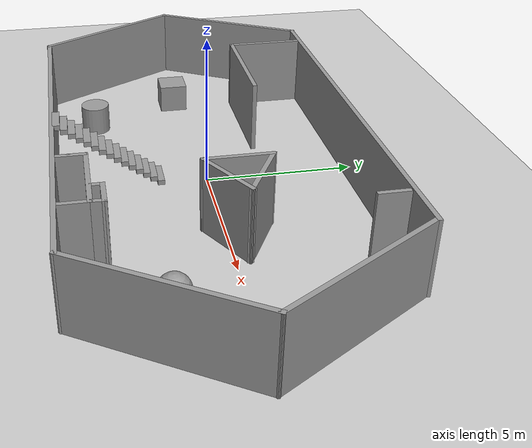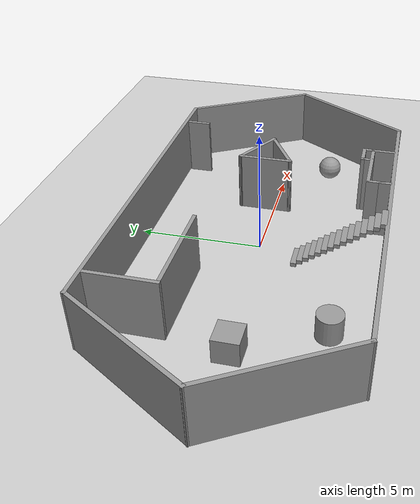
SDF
<sdf version="1.7">
 <world name="default">
  <light name="sun" type="directional">
   <pose>0 0 10 0 -0 0</pose>
   <diffuse>0.8 0.8 0.8 1</diffuse>
   <specular>0.2 0.2 0.2 1</specular>
   <attenuation>
    <range>1000</range>
    <constant>0.9</constant>
    <linear>0.01</linear>
    <quadratic>0.001</quadratic>
   </attenuation>
   <direction>-0.5 0.1 -0.9</direction>
   <spot><inner_angle>0</inner_angle><outer_angle>0</outer_angle><falloff>0</falloff></spot>
  </light>
  <model name="ground_plane">
   <static>1</static>
   <link name="link">
    <collision name="collision">
     <geometry><plane><normal>0 0 1</normal><size>100 100</size></plane></geometry>
     <surface>
      <contact><collide_bitmask>65535</collide_bitmask></contact>
      <friction><ode><mu>100</mu><mu2>50</mu2></ode></friction>
     </surface>
    </collision>
    <visual name="visual">
     <cast_shadows>0</cast_shadows>
     <geometry><plane><normal>0 0 1</normal><size>100 100</size></plane></geometry>
     <material>
      <script><uri>file://media/materials/scripts/gazebo.material</uri><name>Gazebo/Grey</name></script>
     </material>
    </visual>
   </link>
  </model>
  <gravity>0 0 -9.8</gravity>
  <magnetic_field>6e-06 2.3e-05 -4.2e-05</magnetic_field>
  <atmosphere type="adiabatic"/>
  <physics type="ode">
   <max_step_size>0.001</max_step_size>
   <real_time_factor>1</real_time_factor>
   <real_time_update_rate>1000</real_time_update_rate>
  </physics>
  <scene><ambient>0.4 0.4 0.4 1</ambient><background>0.7 0.7 0.7 1</background><shadows>1</shadows></scene>
  <audio><device>default</device></audio>
  <spherical_coordinates>
   <surface_model>EARTH_WGS84</surface_model>
   <latitude_deg>0</latitude_deg>
   <longitude_deg>0</longitude_deg>
   <elevation>0</elevation>
   <heading_deg>0</heading_deg>
  </spherical_coordinates>
  <model name="Untitled">
   <pose>0.042482 -0.098265 0 0 -0 0</pose>
   <link name="Wall_10">
    <collision name="Wall_10_Collision">
     <geometry><box><size>5.75 0.15 2.5</size></box></geometry>
     <pose>0 0 1.25 0 -0 0</pose>
    </collision>
    <visual name="Wall_10_Visual">
     <pose>0 0 1.25 0 -0 0</pose>
     <geometry><box><size>5.75 0.15 2.5</size></box></geometry>
     <material>
      <script><uri>file://media/materials/scripts/gazebo.material</uri><name>Gazebo/Grey</name></script>
      <ambient>1 1 1 1</ambient>
     </material>
     <meta><layer>0</layer></meta>
    </visual>
    <pose>8.32452 2.42535 0 0 -0 -1.0472</pose>
   </link>
   <link name="Wall_12">
    <collision name="Wall_12_Collision">
     <geometry><box><size>5.87909 0.15 2.5</size></box></geometry>
     <pose>0 0 1.25 0 -0 0</pose>
    </collision>
    <visual name="Wall_12_Visual">
     <pose>0 0 1.25 0 -0 0</pose>
     <geometry><box><size>5.87909 0.15 2.5</size></box></geometry>
     <material>
      <script><uri>file://media/materials/scripts/gazebo.material</uri><name>Gazebo/Grey</name></script>
      <ambient>1 1 1 1</ambient>
     </material>
     <meta><layer>0</layer></meta>
    </visual>
    <pose>8.19952 -2.42439 0 0 -0 -2.13219</pose>
   </link>
   <link name="Wall_14">
    <collision name="Wall_14_Collision">
     <geometry><box><size>2.75 0.15 2.5</size></box></geometry>
     <pose>0 0 1.25 0 -0 0</pose>
    </collision>
    <visual name="Wall_14_Visual">
     <pose>0 0 1.25 0 -0 0</pose>
     <geometry><box><size>2.75 0.15 2.5</size></box></geometry>
     <material>
      <script><uri>file://media/materials/scripts/gazebo.material</uri><name>Gazebo/Grey</name></script>
      <ambient>1 1 1 1</ambient>
     </material>
     <meta><layer>0</layer></meta>
    </visual>
    <pose>-5.8277 3.42991 0 0 -0 -1.5708</pose>
   </link>
   <link name="Wall_16">
    <collision name="Wall_16_Collision">
     <geometry><box><size>4 0.15 2.5</size></box></geometry>
     <pose>0 0 1.25 0 -0 0</pose>
    </collision>
    <visual name="Wall_16_Visual">
     <pose>0 0 1.25 0 -0 0</pose>
     <geometry><box><size>4 0.15 2.5</size></box></geometry>
     <material>
      <script><uri>file://media/materials/scripts/gazebo.material</uri><name>Gazebo/Grey</name></script>
      <ambient>1 1 1 1</ambient>
     </material>
     <meta><layer>0</layer></meta>
    </visual>
    <pose>-3.9027 2.12992 0 0 -0 0</pose>
   </link>
   <link name="Wall_19">
    <collision name="Wall_19_Collision">
     <geometry><box><size>2.25 0.15 2.5</size></box></geometry>
     <pose>0 0 1.25 0 -0 0</pose>
    </collision>
    <visual name="Wall_19_Visual">
     <pose>0 0 1.25 0 -0 0</pose>
     <geometry><box><size>2.25 0.15 2.5</size></box></geometry>
     <material>
      <script><uri>file://media/materials/scripts/gazebo.material</uri><name>Gazebo/Grey</name></script>
      <ambient>1 1 1 1</ambient>
     </material>
     <meta><layer>0</layer></meta>
    </visual>
    <pose>2.84125 0.522084 0 0 -0 -1.5708</pose>
   </link>
   <link name="Wall_20">
    <collision name="Wall_20_Collision">
     <geometry><box><size>2.25 0.15 2.5</size></box></geometry>
     <pose>0 0 1.25 0 -0 0</pose>
    </collision>
    <visual name="Wall_20_Visual">
     <pose>0 0 1.25 0 -0 0</pose>
     <geometry><box><size>2.25 0.15 2.5</size></box></geometry>
     <material>
      <script><uri>file://media/materials/scripts/gazebo.material</uri><name>Gazebo/Grey</name></script>
      <ambient>1 1 1 1</ambient>
     </material>
     <meta><layer>0</layer></meta>
    </visual>
    <pose>3.75058 -0.002916 0 0 -0 0.523599</pose>
   </link>
   <link name="Wall_21">
    <collision name="Wall_21_Collision">
     <geometry><box><size>2.25 0.15 2.5</size></box></geometry>
     <pose>0 0 1.25 0 -0 0</pose>
    </collision>
    <visual name="Wall_21_Visual">
     <pose>0 0 1.25 0 -0 0</pose>
     <geometry><box><size>2.25 0.15 2.5</size></box></geometry>
     <material>
      <script><uri>file://media/materials/scripts/gazebo.material</uri><name>Gazebo/Grey</name></script>
      <ambient>1 1 1 1</ambient>
     </material>
     <meta><layer>0</layer></meta>
    </visual>
    <pose>3.75058 1.04708 0 0 -0 2.61799</pose>
   </link>
   <link name="Wall_23">
    <collision name="Wall_23_Collision">
     <geometry><box><size>0.5 0.15 2.5</size></box></geometry>
     <pose>0 0 1.25 0 -0 0</pose>
    </collision>
    <visual name="Wall_23_Visual">
     <pose>0 0 1.25 0 -0 0</pose>
     <geometry><box><size>0.5 0.15 2.5</size></box></geometry>
     <material>
      <script><uri>file://media/materials/scripts/gazebo.material</uri><name>Gazebo/Grey</name></script>
      <ambient>1 1 1 1</ambient>
     </material>
     <meta><layer>0</layer></meta>
    </visual>
    <pose>1.93614 -4.55653 0 0 -0 -1.5708</pose>
   </link>
   <link name="Wall_24">
    <collision name="Wall_24_Collision">
     <geometry><box><size>1 0.15 2.5</size></box></geometry>
     <pose>0 0 1.25 0 -0 0</pose>
    </collision>
    <visual name="Wall_24_Visual">
     <pose>0 0 1.25 0 -0 0</pose>
     <geometry><box><size>1 0.15 2.5</size></box></geometry>
     <material>
      <script><uri>file://media/materials/scripts/gazebo.material</uri><name>Gazebo/Grey</name></script>
      <ambient>1 1 1 1</ambient>
     </material>
     <meta><layer>0</layer></meta>
    </visual>
    <pose>1.93614 -4.30653 0 0 -0 1.5708</pose>
   </link>
   <link name="Wall_25">
    <collision name="Wall_25_Collision">
     <geometry><box><size>2.75 0.15 2.5</size></box></geometry>
     <pose>0 0 1.25 0 -0 0</pose>
    </collision>
    <visual name="Wall_25_Visual">
     <pose>0 0 1.25 0 -0 0</pose>
     <geometry><box><size>2.75 0.15 2.5</size></box></geometry>
     <material>
      <script><uri>file://media/materials/scripts/gazebo.material</uri><name>Gazebo/Grey</name></script>
      <ambient>1 1 1 1</ambient>
     </material>
     <meta><layer>0</layer></meta>
    </visual>
    <pose>3.23614 -3.88153 0 0 -0 0</pose>
   </link>
   <link name="Wall_26">
    <collision name="Wall_26_Collision">
     <geometry><box><size>1 0.15 2.5</size></box></geometry>
     <pose>0 0 1.25 0 -0 0</pose>
    </collision>
    <visual name="Wall_26_Visual">
     <pose>0 0 1.25 0 -0 0</pose>
     <geometry><box><size>1 0.15 2.5</size></box></geometry>
     <material>
      <script><uri>file://media/materials/scripts/gazebo.material</uri><name>Gazebo/Grey</name></script>
      <ambient>1 1 1 1</ambient>
     </material>
     <meta><layer>0</layer></meta>
    </visual>
    <pose>4.53614 -4.30653 0 0 -0 -1.5708</pose>
   </link>
   <link name="Wall_28">
    <collision name="Wall_28_Collision">
     <geometry><box><size>0.5 0.15 2.5</size></box></geometry>
     <pose>0 0 1.25 0 -0 0</pose>
    </collision>
    <visual name="Wall_28_Visual">
     <pose>0 0 1.25 0 -0 0</pose>
     <geometry><box><size>0.5 0.15 2.5</size></box></geometry>
     <material>
      <script><uri>file://media/materials/scripts/gazebo.material</uri><name>Gazebo/Grey</name></script>
      <ambient>1 1 1 1</ambient>
     </material>
     <meta><layer>0</layer></meta>
    </visual>
    <pose>3.70614 -3.67154 0 0 -0 -1.5708</pose>
   </link>
   <link name="Wall_3">
    <collision name="Wall_3_Collision">
     <geometry><box><size>13.75 0.15 2.5</size></box></geometry>
     <pose>0 0 1.25 0 -0 0</pose>
    </collision>
    <visual name="Wall_3_Visual">
     <pose>0 0 1.25 0 -0 0</pose>
     <geometry><box><size>13.75 0.15 2.5</size></box></geometry>
     <material>
      <script><uri>file://media/materials/scripts/gazebo.material</uri><name>Gazebo/Grey</name></script>
      <ambient>1 1 1 1</ambient>
     </material>
     <meta><layer>0</layer></meta>
    </visual>
    <pose>-0.125482 -4.84926 0 0 -0 0</pose>
   </link>
   <link name="Wall_30">
    <collision name="Wall_30_Collision">
     <geometry><box><size>1 0.15 2.5</size></box></geometry>
     <pose>0 0 1.25 0 -0 0</pose>
    </collision>
    <visual name="Wall_30_Visual">
     <pose>0 0 1.25 0 -0 0</pose>
     <geometry><box><size>1 0.15 2.5</size></box></geometry>
     <material>
      <script><uri>file://media/materials/scripts/gazebo.material</uri><name>Gazebo/Grey</name></script>
      <ambient>1 1 1 1</ambient>
     </material>
     <meta><layer>0</layer></meta>
    </visual>
    <pose>4.13113 -3.49654 0 0 -0 0</pose>
   </link>
   <link name="Wall_31">
    <collision name="Wall_31_Collision">
     <geometry><box><size>0.535516 0.15 2.5</size></box></geometry>
     <pose>0 0 1.25 0 -0 0</pose>
    </collision>
    <visual name="Wall_31_Visual">
     <pose>0 0 1.25 0 -0 0</pose>
     <geometry><box><size>0.535516 0.15 2.5</size></box></geometry>
     <material>
      <script><uri>file://media/materials/scripts/gazebo.material</uri><name>Gazebo/Grey</name></script>
      <ambient>1 1 1 1</ambient>
     </material>
     <meta><layer>0</layer></meta>
    </visual>
    <pose>4.54614 -3.68903 0 0 -0 -1.62268</pose>
   </link>
   <link name="Wall_6">
    <collision name="Wall_6_Collision">
     <geometry><box><size>5.75 0.15 2.5</size></box></geometry>
     <pose>0 0 1.25 0 -0 0</pose>
    </collision>
    <visual name="Wall_6_Visual">
     <pose>0 0 1.25 0 -0 0</pose>
     <geometry><box><size>5.75 0.15 2.5</size></box></geometry>
     <material>
      <script><uri>file://media/materials/scripts/gazebo.material</uri><name>Gazebo/Grey</name></script>
      <ambient>1 1 1 1</ambient>
     </material>
     <meta><layer>0</layer></meta>
    </visual>
    <pose>-8.32548 -2.42439 0 0 -0 2.0944</pose>
   </link>
   <link name="Wall_8">
    <collision name="Wall_8_Collision">
     <geometry><box><size>5.75 0.15 2.5</size></box></geometry>
     <pose>0 0 1.25 0 -0 0</pose>
    </collision>
    <visual name="Wall_8_Visual">
     <pose>0 0 1.25 0 -0 0</pose>
     <geometry><box><size>5.75 0.15 2.5</size></box></geometry>
     <material>
      <script><uri>file://media/materials/scripts/gazebo.material</uri><name>Gazebo/Grey</name></script>
      <ambient>1 1 1 1</ambient>
     </material>
     <meta><layer>0</layer></meta>
    </visual>
    <pose>-8.32548 2.42535 0 0 -0 1.0472</pose>
   </link>
   <link name="Wall_9">
    <collision name="Wall_9_Collision">
     <geometry><box><size>14.0201 0.15 2.5</size></box></geometry>
     <pose>0 0 1.25 0 -0 0</pose>
    </collision>
    <visual name="Wall_9_Visual">
     <pose>0 0 1.25 0 -0 0</pose>
     <geometry><box><size>14.0201 0.15 2.5</size></box></geometry>
     <material>
      <script><uri>file://media/materials/scripts/gazebo.material</uri><name>Gazebo/Grey</name></script>
      <ambient>1 1 1 1</ambient>
     </material>
     <meta><layer>0</layer></meta>
    </visual>
    <pose>0.009574 4.86028 0 0 -0 0.00145</pose>
   </link>
   <static>1</static>
  </model>
  <model name="unit_cylinder">
   <pose>-4.43584 -3.4393 0.499993 -3e-06 -3e-06 0</pose>
   <link name="link">
    <inertial>
     <mass>1</mass>
     <inertia><ixx>0.145833</ixx><ixy>0</ixy><ixz>0</ixz><iyy>0.145833</iyy><iyz>0</iyz><izz>0.125</izz></inertia>
    </inertial>
    <collision name="collision">
     <geometry><cylinder><radius>0.5</radius><length>1</length></cylinder></geometry>
    </collision>
    <visual name="visual">
     <geometry><cylinder><radius>0.5</radius><length>1</length></cylinder></geometry>
     <material>
      <script><name>Gazebo/Grey</name><uri>file://media/materials/scripts/gazebo.material</uri></script>
     </material>
    </visual>
   </link>
  </model>
  <model name="unit_sphere">
   <pose>6.17165 -1.98391 0.5 0 -0 0</pose>
   <link name="link">
    <inertial>
     <mass>1</mass>
     <inertia><ixx>0.1</ixx><ixy>0</ixy><ixz>0</ixz><iyy>0.1</iyy><iyz>0</iyz><izz>0.1</izz></inertia>
    </inertial>
    <collision name="collision"><geometry><sphere><radius>0.5</radius></sphere></geometry></collision>
    <visual name="visual">
     <geometry><sphere><radius>0.5</radius></sphere></geometry>
     <material>
      <script><name>Gazebo/Grey</name><uri>file://media/materials/scripts/gazebo.material</uri></script>
     </material>
    </visual>
   </link>
  </model>
  <model name="unit_box">
   <pose>-5.9919 -0.329924 0.499995 -1e-05 -0 0</pose>
   <link name="link">
    <inertial>
     <mass>1</mass>
     <inertia>
      <ixx>0.166667</ixx>
      <ixy>0</ixy>
      <ixz>0</ixz>
      <iyy>0.166667</iyy>
      <iyz>0</iyz>
      <izz>0.166667</izz>
     </inertia>
    </inertial>
    <collision name="collision"><geometry><box><size>1 1 1</size></box></geometry></collision>
    <visual name="visual">
     <geometry><box><size>1 1 1</size></box></geometry>
     <material>
      <script><name>Gazebo/Grey</name><uri>file://media/materials/scripts/gazebo.material</uri></script>
     </material>
    </visual>
   </link>
  </model>
  <model name="Untitled_0">
   <pose>2.32212 -0.136701 0 0 -0 0</pose>
   <link name="Stairs_4">
    <visual name="Stairs_4_Visual_0">
     <pose>-2.78671 -1.40544 0.083333 0 -0 0</pose>
     <geometry><box><size>1 0.233333 0.166667</size></box></geometry>
     <material>
      <script><uri>file://media/materials/scripts/gazebo.material</uri><name>Gazebo/Grey</name></script>
      <ambient>1 1 1 1</ambient>
     </material>
     <meta><layer>0</layer></meta>
    </visual>
    <collision name="Stairs_4_Collision_0">
     <geometry><box><size>1 0.233333 0.166667</size></box></geometry>
     <pose>-2.78671 -1.40544 0.083333 0 -0 0</pose>
    </collision>
    <visual name="Stairs_4_Visual_1">
     <pose>-2.78671 -1.63877 0.25 0 -0 0</pose>
     <geometry><box><size>1 0.233333 0.166667</size></box></geometry>
     <material>
      <script><uri>file://media/materials/scripts/gazebo.material</uri><name>Gazebo/Grey</name></script>
      <ambient>1 1 1 1</ambient>
     </material>
     <meta><layer>0</layer></meta>
    </visual>
    <collision name="Stairs_4_Collision_1">
     <geometry><box><size>1 0.233333 0.166667</size></box></geometry>
     <pose>-2.78671 -1.63877 0.25 0 -0 0</pose>
    </collision>
    <visual name="Stairs_4_Visual_2">
     <pose>-2.78671 -1.8721 0.416667 0 -0 0</pose>
     <geometry><box><size>1 0.233333 0.166667</size></box></geometry>
     <material>
      <script><uri>file://media/materials/scripts/gazebo.material</uri><name>Gazebo/Grey</name></script>
      <ambient>1 1 1 1</ambient>
     </material>
     <meta><layer>0</layer></meta>
    </visual>
    <collision name="Stairs_4_Collision_2">
     <geometry><box><size>1 0.233333 0.166667</size></box></geometry>
     <pose>-2.78671 -1.8721 0.416667 0 -0 0</pose>
    </collision>
    <visual name="Stairs_4_Visual_3">
     <pose>-2.78671 -2.10544 0.583333 0 -0 0</pose>
     <geometry><box><size>1 0.233333 0.166667</size></box></geometry>
     <material>
      <script><uri>file://media/materials/scripts/gazebo.material</uri><name>Gazebo/Grey</name></script>
      <ambient>1 1 1 1</ambient>
     </material>
     <meta><layer>0</layer></meta>
    </visual>
    <collision name="Stairs_4_Collision_3">
     <geometry><box><size>1 0.233333 0.166667</size></box></geometry>
     <pose>-2.78671 -2.10544 0.583333 0 -0 0</pose>
    </collision>
    <visual name="Stairs_4_Visual_4">
     <pose>-2.78671 -2.33877 0.75 0 -0 0</pose>
     <geometry><box><size>1 0.233333 0.166667</size></box></geometry>
     <material>
      <script><uri>file://media/materials/scripts/gazebo.material</uri><name>Gazebo/Grey</name></script>
      <ambient>1 1 1 1</ambient>
     </material>
     <meta><layer>0</layer></meta>
    </visual>
    <collision name="Stairs_4_Collision_4">
     <geometry><box><size>1 0.233333 0.166667</size></box></geometry>
     <pose>-2.78671 -2.33877 0.75 0 -0 0</pose>
    </collision>
    <visual name="Stairs_4_Visual_5">
     <pose>-2.78671 -2.5721 0.916667 0 -0 0</pose>
     <geometry><box><size>1 0.233333 0.166667</size></box></geometry>
     <material>
      <script><uri>file://media/materials/scripts/gazebo.material</uri><name>Gazebo/Grey</name></script>
      <ambient>1 1 1 1</ambient>
     </material>
     <meta><layer>0</layer></meta>
    </visual>
    <collision name="Stairs_4_Collision_5">
     <geometry><box><size>1 0.233333 0.166667</size></box></geometry>
     <pose>-2.78671 -2.5721 0.916667 0 -0 0</pose>
    </collision>
    <visual name="Stairs_4_Visual_6">
     <pose>-2.78671 -2.80544 1.08333 0 -0 0</pose>
     <geometry><box><size>1 0.233333 0.166667</size></box></geometry>
     <material>
      <script><uri>file://media/materials/scripts/gazebo.material</uri><name>Gazebo/Grey</name></script>
      <ambient>1 1 1 1</ambient>
     </material>
     <meta><layer>0</layer></meta>
    </visual>
    <collision name="Stairs_4_Collision_6">
     <geometry><box><size>1 0.233333 0.166667</size></box></geometry>
     <pose>-2.78671 -2.80544 1.08333 0 -0 0</pose>
    </collision>
    <visual name="Stairs_4_Visual_7">
     <pose>-2.78671 -3.03877 1.25 0 -0 0</pose>
     <geometry><box><size>1 0.233333 0.166667</size></box></geometry>
     <material>
      <script><uri>file://media/materials/scripts/gazebo.material</uri><name>Gazebo/Grey</name></script>
      <ambient>1 1 1 1</ambient>
     </material>
     <meta><layer>0</layer></meta>
    </visual>
    <collision name="Stairs_4_Collision_7">
     <geometry><box><size>1 0.233333 0.166667</size></box></geometry>
     <pose>-2.78671 -3.03877 1.25 0 -0 0</pose>
    </collision>
    <visual name="Stairs_4_Visual_8">
     <pose>-2.78671 -3.2721 1.41667 0 -0 0</pose>
     <geometry><box><size>1 0.233333 0.166667</size></box></geometry>
     <material>
      <script><uri>file://media/materials/scripts/gazebo.material</uri><name>Gazebo/Grey</name></script>
      <ambient>1 1 1 1</ambient>
     </material>
     <meta><layer>0</layer></meta>
    </visual>
    <collision name="Stairs_4_Collision_8">
     <geometry><box><size>1 0.233333 0.166667</size></box></geometry>
     <pose>-2.78671 -3.2721 1.41667 0 -0 0</pose>
    </collision>
    <visual name="Stairs_4_Visual_9">
     <pose>-2.78671 -3.50544 1.58333 0 -0 0</pose>
     <geometry><box><size>1 0.233333 0.166667</size></box></geometry>
     <material>
      <script><uri>file://media/materials/scripts/gazebo.material</uri><name>Gazebo/Grey</name></script>
      <ambient>1 1 1 1</ambient>
     </material>
     <meta><layer>0</layer></meta>
    </visual>
    <collision name="Stairs_4_Collision_9">
     <geometry><box><size>1 0.233333 0.166667</size></box></geometry>
     <pose>-2.78671 -3.50544 1.58333 0 -0 0</pose>
    </collision>
    <visual name="Stairs_4_Visual_10">
     <pose>-2.78671 -3.73877 1.75 0 -0 0</pose>
     <geometry><box><size>1 0.233333 0.166667</size></box></geometry>
     <material>
      <script><uri>file://media/materials/scripts/gazebo.material</uri><name>Gazebo/Grey</name></script>
      <ambient>1 1 1 1</ambient>
     </material>
     <meta><layer>0</layer></meta>
    </visual>
    <collision name="Stairs_4_Collision_10">
     <geometry><box><size>1 0.233333 0.166667</size></box></geometry>
     <pose>-2.78671 -3.73877 1.75 0 -0 0</pose>
    </collision>
    <visual name="Stairs_4_Visual_11">
     <pose>-2.78671 -3.9721 1.91667 0 -0 0</pose>
     <geometry><box><size>1 0.233333 0.166667</size></box></geometry>
     <material>
      <script><uri>file://media/materials/scripts/gazebo.material</uri><name>Gazebo/Grey</name></script>
      <ambient>1 1 1 1</ambient>
     </material>
     <meta><layer>0</layer></meta>
    </visual>
    <collision name="Stairs_4_Collision_11">
     <geometry><box><size>1 0.233333 0.166667</size></box></geometry>
     <pose>-2.78671 -3.9721 1.91667 0 -0 0</pose>
    </collision>
    <visual name="Stairs_4_Visual_12">
     <pose>-2.78671 -4.20544 2.08333 0 -0 0</pose>
     <geometry><box><size>1 0.233333 0.166667</size></box></geometry>
     <material>
      <script><uri>file://media/materials/scripts/gazebo.material</uri><name>Gazebo/Grey</name></script>
      <ambient>1 1 1 1</ambient>
     </material>
     <meta><layer>0</layer></meta>
    </visual>
    <collision name="Stairs_4_Collision_12">
     <geometry><box><size>1 0.233333 0.166667</size></box></geometry>
     <pose>-2.78671 -4.20544 2.08333 0 -0 0</pose>
    </collision>
    <visual name="Stairs_4_Visual_13">
     <pose>-2.78671 -4.43877 2.25 0 -0 0</pose>
     <geometry><box><size>1 0.233333 0.166667</size></box></geometry>
     <material>
      <script><uri>file://media/materials/scripts/gazebo.material</uri><name>Gazebo/Grey</name></script>
      <ambient>1 1 1 1</ambient>
     </material>
     <meta><layer>0</layer></meta>
    </visual>
    <collision name="Stairs_4_Collision_13">
     <geometry><box><size>1 0.233333 0.166667</size></box></geometry>
     <pose>-2.78671 -4.43877 2.25 0 -0 0</pose>
    </collision>
    <visual name="Stairs_4_Visual_14">
     <pose>-2.78671 -4.6721 2.41667 0 -0 0</pose>
     <geometry><box><size>1 0.233333 0.166667</size></box></geometry>
     <material>
      <script><uri>file://media/materials/scripts/gazebo.material</uri><name>Gazebo/Grey</name></script>
      <ambient>1 1 1 1</ambient>
     </material>
     <meta><layer>0</layer></meta>
    </visual>
    <collision name="Stairs_4_Collision_14">
     <geometry><box><size>1 0.233333 0.166667</size></box></geometry>
     <pose>-2.78671 -4.6721 2.41667 0 -0 0</pose>
    </collision>
   </link>
   <link name="Wall_51">
    <collision name="Wall_51_Collision">
     <geometry><box><size>1 0.15 2.5</size></box></geometry>
     <pose>0 0 1.25 0 -0 0</pose>
    </collision>
    <visual name="Wall_51_Visual">
     <pose>0 0 1.25 0 -0 0</pose>
     <geometry><box><size>1 0.15 2.5</size></box></geometry>
     <material>
      <script><uri>file://media/materials/scripts/gazebo.material</uri><name>Gazebo/Grey</name></script>
      <ambient>1 1 1 1</ambient>
     </material>
     <meta><layer>0</layer></meta>
    </visual>
    <pose>3.21171 4.28877 0 0 -0 -1.5708</pose>
   </link>
   <static>1</static>
  </model>
 </world>
</sdf>
